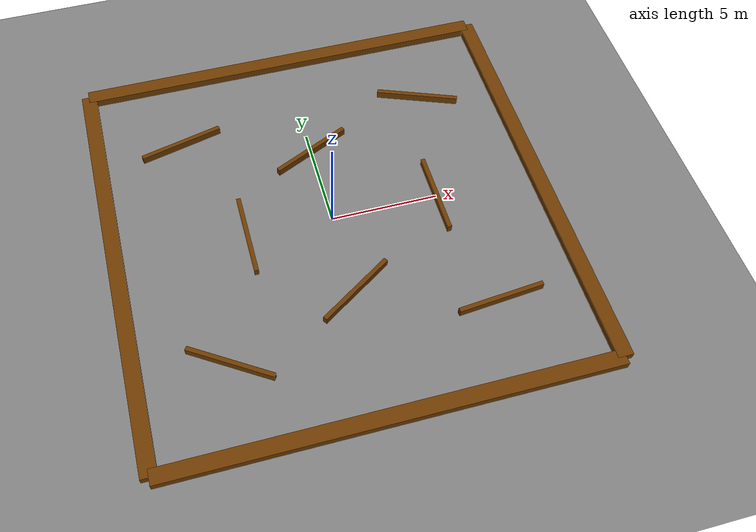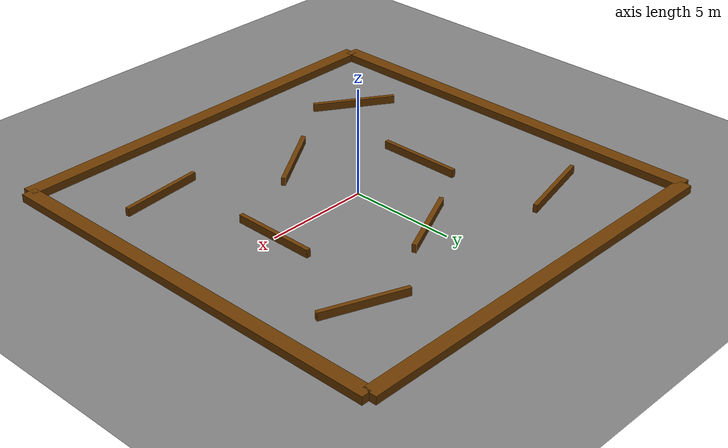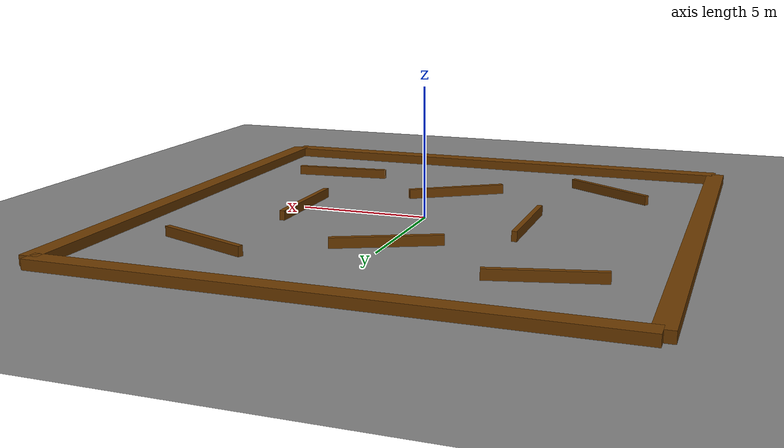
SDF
<?xml version="1.0" ?>
<!-- Arena world for Ignition Gazebo (Fortress / humble). Same geometry as
     arena_gz.world; only the system-plugin names differ (ignition-gazebo-*). -->
<sdf version="1.6">
  <world name="default">

  <plugin filename="ignition-gazebo-physics-system" name="ignition::gazebo::systems::Physics"/>
  <plugin filename="ignition-gazebo-scene-broadcaster-system" name="ignition::gazebo::systems::SceneBroadcaster"/>
  <plugin filename="ignition-gazebo-user-commands-system" name="ignition::gazebo::systems::UserCommands"/>
  <plugin filename="ignition-gazebo-sensors-system" name="ignition::gazebo::systems::Sensors">
    <render_engine>ogre2</render_engine>
  </plugin>
  <plugin filename="ignition-gazebo-imu-system" name="ignition::gazebo::systems::Imu"/>

  <scene>
    <ambient>0.5 0.5 0.5 1.0</ambient>
    <shadows>0</shadows>
  </scene>

  <light type="directional" name="sun">
    <pose>0 0 15 0 0 0</pose>
    <diffuse>0.8 0.8 0.8 1</diffuse>
    <specular>0.2 0.2 0.2 1</specular>
    <direction>-0.5 0.1 -0.9</direction>
    <cast_shadows>false</cast_shadows>
  </light>

  <light type="point" name="Light 1">
    <pose>0 0 15 0 0 0</pose>
    <diffuse>.9 .9 .9 1</diffuse>
    <specular>.1 .1 .1 1</specular>
    <attenuation>
      <constant>0.5</constant>
      <linear>0.01</linear>
      <quadratic>0.0</quadratic>
      <range>50</range>
    </attenuation>
    <direction>0 0 -1</direction>
    <cast_shadows>false</cast_shadows>
  </light>

  <model name='ground_plane'>
    <static>1</static>
    <link name='link'>
      <collision name='collision'>
        <geometry>
          <plane>
            <normal>0 0 1</normal>
            <size>100 100</size>
          </plane>
        </geometry>
        <surface>
          <friction>
            <ode>
              <mu>1000</mu>
              <mu2>500</mu2>
            </ode>
          </friction>
        </surface>
      </collision>
      <visual name='visual'>
        <cast_shadows>0</cast_shadows>
        <geometry>
          <plane>
            <normal>0 0 1</normal>
            <size>100 100</size>
          </plane>
        </geometry>
        <material>
          <ambient>0.5 0.5 0.5 1</ambient>
          <diffuse>0.5 0.5 0.5 1</diffuse>
        </material>
      </visual>
    </link>
  </model>

  <model name='arena'>
    <static>1</static>
    <link name="wall1">
      <pose>10 0 0 0 0 0</pose>
      <collision name="wall1_collision">
        <geometry><box><size>0.7 20 0.7</size></box></geometry>
      </collision>
      <visual name="wall1_visual">
        <geometry><box><size>0.7 20 0.7</size></box></geometry>
        <material>
          <ambient>0.2 0.2 0.2 1.0</ambient>
          <diffuse>0.421 0.225 0.0 1.0</diffuse>
        </material>
      </visual>
    </link>
    <link name="wall2">
      <pose>-10 0 0 0 0 0</pose>
      <collision name="wall2_collision">
        <geometry><box><size>0.7 20 0.7</size></box></geometry>
      </collision>
      <visual name="wall2_visual">
        <geometry><box><size>0.7 20 0.7</size></box></geometry>
        <material>
          <ambient>0.2 0.2 0.2 1.0</ambient>
          <diffuse>0.421 0.225 0.0 1.0</diffuse>
        </material>
      </visual>
    </link>
    <link name="wall3">
      <pose>0 -10 0 0 0 1.57</pose>
      <collision name="wall3_collision">
        <geometry><box><size>0.7 20 0.7</size></box></geometry>
      </collision>
      <visual name="wall3_visual">
        <geometry><box><size>0.7 20 0.7</size></box></geometry>
        <material>
          <ambient>0.2 0.2 0.2 1.0</ambient>
          <diffuse>0.421 0.225 0.0 1.0</diffuse>
        </material>
      </visual>
    </link>
    <link name="wall4">
      <pose>0 10 0 0 0 1.57</pose>
      <collision name="wall4_collision">
        <geometry><box><size>0.7 20 0.7</size></box></geometry>
      </collision>
      <visual name="wall4_visual">
        <geometry><box><size>0.7 20 0.7</size></box></geometry>
        <material>
          <ambient>0.2 0.2 0.2 1.0</ambient>
          <diffuse>0.421 0.225 0.0 1.0</diffuse>
        </material>
      </visual>
    </link>
    <link name="obs1">
      <pose>5 0 0 0 0 0</pose>
      <collision name="obs_collision">
        <geometry><box><size>0.2 4 0.7</size></box></geometry>
      </collision>
      <visual name="obs_visual">
        <geometry><box><size>0.2 4 0.7</size></box></geometry>
        <material>
          <ambient>0.2 0.2 0.2 1.0</ambient>
          <diffuse>0.421 0.225 0.0 1.0</diffuse>
        </material>
      </visual>
    </link>
    <link name="obs2">
      <pose>-4 0 0 0 0 0</pose>
      <collision name="obs_collision">
        <geometry><box><size>0.2 4 0.7</size></box></geometry>
      </collision>
      <visual name="obs_visual">
        <geometry><box><size>0.2 4 0.7</size></box></geometry>
        <material>
          <ambient>0.2 0.2 0.2 1.0</ambient>
          <diffuse>0.421 0.225 0.0 1.0</diffuse>
        </material>
      </visual>
    </link>
    <link name="obs3">
      <pose>0 4 0 0 0 2</pose>
      <collision name="obs_collision">
        <geometry><box><size>0.2 4 0.7</size></box></geometry>
      </collision>
      <visual name="obs_visual">
        <geometry><box><size>0.2 4 0.7</size></box></geometry>
        <material>
          <ambient>0.2 0.2 0.2 1.0</ambient>
          <diffuse>0.421 0.225 0.0 1.0</diffuse>
        </material>
      </visual>
    </link>
    <link name="obs4">
      <pose>0 -4 0 0 0 -1</pose>
      <collision name="obs_collision">
        <geometry><box><size>0.2 4 0.7</size></box></geometry>
      </collision>
      <visual name="obs_visual">
        <geometry><box><size>0.2 4 0.7</size></box></geometry>
        <material>
          <ambient>0.2 0.2 0.2 1.0</ambient>
          <diffuse>0.421 0.225 0.0 1.0</diffuse>
        </material>
      </visual>
    </link>
    <link name="obs5">
      <pose>6 6 0 0 0 1.2</pose>
      <collision name="obs_collision">
        <geometry><box><size>0.2 4 0.7</size></box></geometry>
      </collision>
      <visual name="obs_visual">
        <geometry><box><size>0.2 4 0.7</size></box></geometry>
        <material>
          <ambient>0.2 0.2 0.2 1.0</ambient>
          <diffuse>0.421 0.225 0.0 1.0</diffuse>
        </material>
      </visual>
    </link>
    <link name="obs6">
      <pose>6 -6 0 0 0 1.66</pose>
      <collision name="obs_collision">
        <geometry><box><size>0.2 4 0.7</size></box></geometry>
      </collision>
      <visual name="obs_visual">
        <geometry><box><size>0.2 4 0.7</size></box></geometry>
        <material>
          <ambient>0.2 0.2 0.2 1.0</ambient>
          <diffuse>0.421 0.225 0.0 1.0</diffuse>
        </material>
      </visual>
    </link>
    <link name="obs7">
      <pose>-6 -6 0 0 0 1</pose>
      <collision name="obs_collision">
        <geometry><box><size>0.2 4 0.7</size></box></geometry>
      </collision>
      <visual name="obs_visual">
        <geometry><box><size>0.2 4 0.7</size></box></geometry>
        <material>
          <ambient>0.2 0.2 0.2 1.0</ambient>
          <diffuse>0.421 0.225 0.0 1.0</diffuse>
        </material>
      </visual>
    </link>
    <link name="obs8">
      <pose>-6 6 0 0 0 -1.34</pose>
      <collision name="obs_collision">
        <geometry><box><size>0.2 4 0.7</size></box></geometry>
      </collision>
      <visual name="obs_visual">
        <geometry><box><size>0.2 4 0.7</size></box></geometry>
        <material>
          <ambient>0.2 0.2 0.2 1.0</ambient>
          <diffuse>0.421 0.225 0.0 1.0</diffuse>
        </material>
      </visual>
    </link>
  </model>

  </world>
</sdf>
